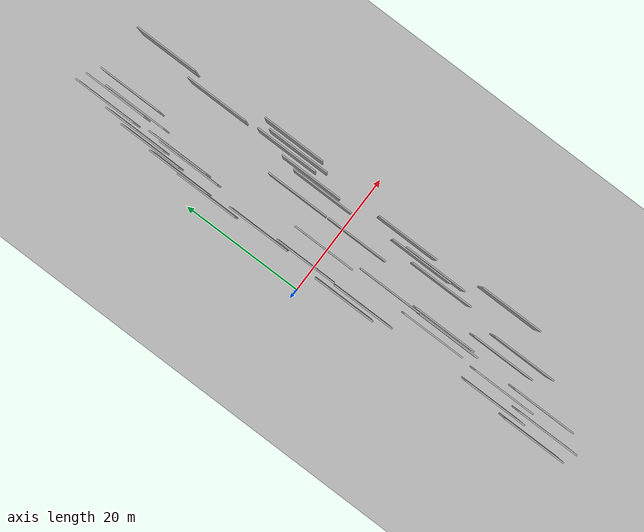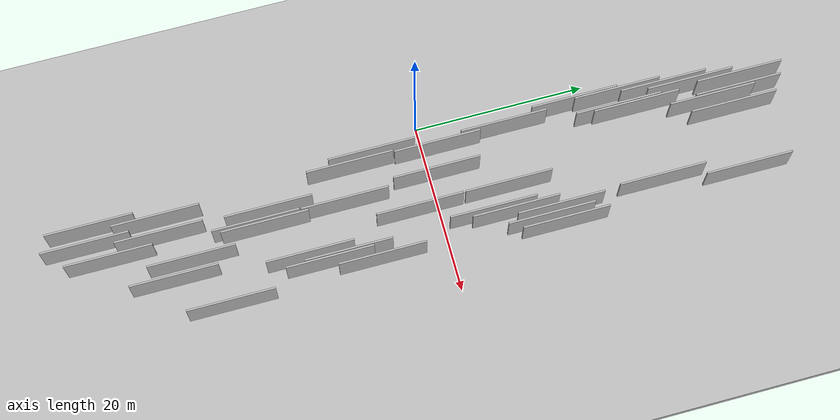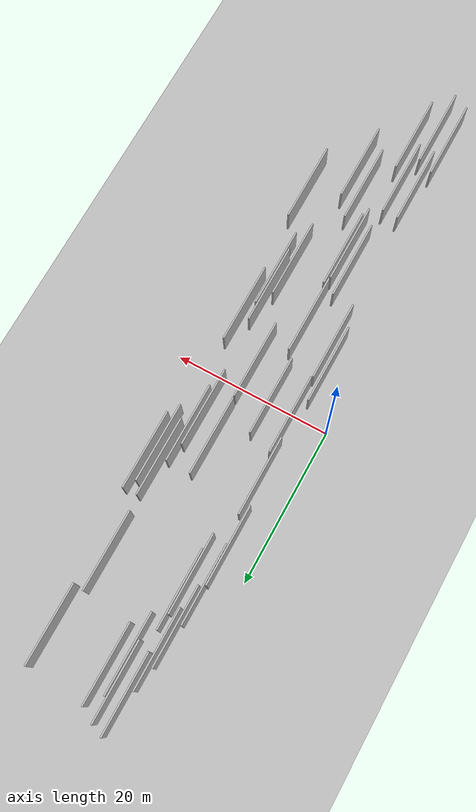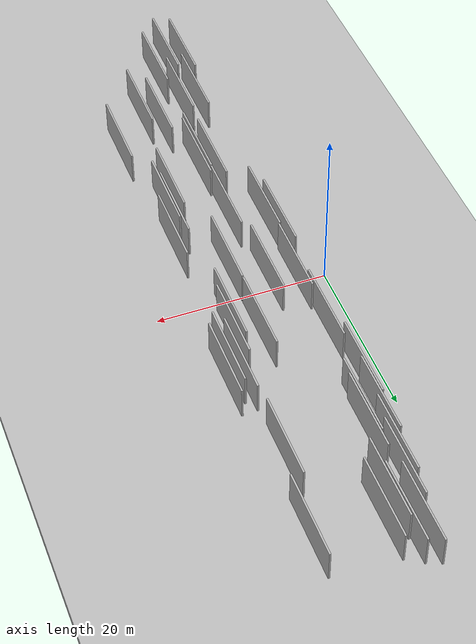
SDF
<?xml version="1.0" encoding="utf-8"?>

<sdf version="1.6">

   <world name="default">

      <gui fullscreen="0">

         <camera name="user_camera">

            <pose>-15 0 4.57585 0 0 0</pose>

            <view_controller>orbit</view_controller>

         </camera>

      </gui>

      <scene>

         <sky>

           <clouds>

             <speed>12</speed>

           </clouds>

         </sky>

         <ambient>0.4 0.4 0.4 1</ambient>

         <background>0.7 0.7 0.7 1</background>

         <shadows>1</shadows>

      </scene>

      <gravity>0 0 -9.8066</gravity>

      <magnetic_field>6e-06 2.3e-05 -4.2e-05</magnetic_field>

      <physics default="0" name="default_physics" type="ode">

         <ode>

            <solver>

               <type>quick</type>

               <iters>10</iters>

               <sor>1.0</sor>

               <use_dynamic_moi_rescaling>0</use_dynamic_moi_rescaling>

            </solver>

            <constraints>

               <cfm>0</cfm>

               <erp>0.2</erp>

               <contact_max_correcting_vel>100</contact_max_correcting_vel>

               <contact_surface_layer>0.001</contact_surface_layer>

            </constraints>

         </ode>

         <max_step_size>0.004</max_step_size>

         <real_time_factor>1</real_time_factor>

         <real_time_update_rate>250</real_time_update_rate>

      </physics>

      <light name="sun" type="directional">

         <cast_shadows>1</cast_shadows>

         <pose>0 0 10 0 0 0</pose>

         <diffuse>0.8 0.8 0.8 1</diffuse>

         <specular>0.2 0.2 0.2 1</specular>

         <attenuation>

            <range>1000</range>

            <constant>0.9</constant>

            <linear>0.01</linear>

            <quadratic>0.001</quadratic>

         </attenuation>

         <direction>-0.5 0.1 -0.9</direction>

      </light>

      <include>

         <name>ground_plane_1</name>

         <uri>model://HANNAS_ground_plane</uri>

         <pose>0 0 0  0 0 0</pose>

      </include>

      <include>

         <name>ground_plane_2</name>

         <uri>model://HANNAS_ground_plane</uri>

         <pose>100 0 0  0 0 0</pose>

      </include>

      <model name="HANNAS_wall_1">

         <static>1</static>

         <pose frame="">5.0728 36.7330 2.5 0.000000 0.000000 1.570796</pose>

         <link name="link">

            <pose frame="">0 0 2.00 0 0 0</pose>

            <collision name="collision">

               <geometry>

                  <box>

                     <size>10.00 0.2 4.00</size>

                  </box>

               </geometry>

               <max_contacts>10</max_contacts>

               <surface>

                  <contact>

                     <ode/>

                  </contact>

                  <bounce/>

                  <friction>

                     <torsional>

                        <ode/>

                     </torsional>

                     <ode/>

                  </friction>

               </surface>

            </collision>

            <visual name="visual">

               <cast_shadows>0</cast_shadows>

               <geometry>

                  <box>

                     <size>10.00 0.2 4.00</size>

                  </box>

               </geometry>

               <material>

                  <script>

                     <uri>model://HANNAS_wall/materials/scripts</uri>

                     <uri>model://HANNAS_wall/materials/textures</uri>

                     <name>vrc/HANNAS_wall</name>

                  </script>

               </material>

            </visual>

            <self_collide>0</self_collide>

            <enable_wind>0</enable_wind>

            <kinematic>0</kinematic>

         </link>

      </model>

      <model name="HANNAS_wall_2">

         <static>1</static>

         <pose frame="">13.0026 -15.4827 2.5 0.000000 0.000000 1.570796</pose>

         <link name="link">

            <pose frame="">0 0 2.00 0 0 0</pose>

            <collision name="collision">

               <geometry>

                  <box>

                     <size>10.00 0.2 4.00</size>

                  </box>

               </geometry>

               <max_contacts>10</max_contacts>

               <surface>

                  <contact>

                     <ode/>

                  </contact>

                  <bounce/>

                  <friction>

                     <torsional>

                        <ode/>

                     </torsional>

                     <ode/>

                  </friction>

               </surface>

            </collision>

            <visual name="visual">

               <cast_shadows>0</cast_shadows>

               <geometry>

                  <box>

                     <size>10.00 0.2 4.00</size>

                  </box>

               </geometry>

               <material>

                  <script>

                     <uri>model://HANNAS_wall/materials/scripts</uri>

                     <uri>model://HANNAS_wall/materials/textures</uri>

                     <name>vrc/HANNAS_wall</name>

                  </script>

               </material>

            </visual>

            <self_collide>0</self_collide>

            <enable_wind>0</enable_wind>

            <kinematic>0</kinematic>

         </link>

      </model>

      <model name="HANNAS_wall_3">

         <static>1</static>

         <pose frame="">14.5933 24.6313 2.5 0.000000 0.000000 1.570796</pose>

         <link name="link">

            <pose frame="">0 0 2.00 0 0 0</pose>

            <collision name="collision">

               <geometry>

                  <box>

                     <size>10.00 0.2 4.00</size>

                  </box>

               </geometry>

               <max_contacts>10</max_contacts>

               <surface>

                  <contact>

                     <ode/>

                  </contact>

                  <bounce/>

                  <friction>

                     <torsional>

                        <ode/>

                     </torsional>

                     <ode/>

                  </friction>

               </surface>

            </collision>

            <visual name="visual">

               <cast_shadows>0</cast_shadows>

               <geometry>

                  <box>

                     <size>10.00 0.2 4.00</size>

                  </box>

               </geometry>

               <material>

                  <script>

                     <uri>model://HANNAS_wall/materials/scripts</uri>

                     <uri>model://HANNAS_wall/materials/textures</uri>

                     <name>vrc/HANNAS_wall</name>

                  </script>

               </material>

            </visual>

            <self_collide>0</self_collide>

            <enable_wind>0</enable_wind>

            <kinematic>0</kinematic>

         </link>

      </model>

      <model name="HANNAS_wall_4">

         <static>1</static>

         <pose frame="">15.7296 11.4250 2.5 0.000000 0.000000 1.570796</pose>

         <link name="link">

            <pose frame="">0 0 2.00 0 0 0</pose>

            <collision name="collision">

               <geometry>

                  <box>

                     <size>10.00 0.2 4.00</size>

                  </box>

               </geometry>

               <max_contacts>10</max_contacts>

               <surface>

                  <contact>

                     <ode/>

                  </contact>

                  <bounce/>

                  <friction>

                     <torsional>

                        <ode/>

                     </torsional>

                     <ode/>

                  </friction>

               </surface>

            </collision>

            <visual name="visual">

               <cast_shadows>0</cast_shadows>

               <geometry>

                  <box>

                     <size>10.00 0.2 4.00</size>

                  </box>

               </geometry>

               <material>

                  <script>

                     <uri>model://HANNAS_wall/materials/scripts</uri>

                     <uri>model://HANNAS_wall/materials/textures</uri>

                     <name>vrc/HANNAS_wall</name>

                  </script>

               </material>

            </visual>

            <self_collide>0</self_collide>

            <enable_wind>0</enable_wind>

            <kinematic>0</kinematic>

         </link>

      </model>

      <model name="HANNAS_wall_5">

         <static>1</static>

         <pose frame="">11.8016 -30.5223 2.5 0.000000 0.000000 1.570796</pose>

         <link name="link">

            <pose frame="">0 0 2.00 0 0 0</pose>

            <collision name="collision">

               <geometry>

                  <box>

                     <size>10.00 0.2 4.00</size>

                  </box>

               </geometry>

               <max_contacts>10</max_contacts>

               <surface>

                  <contact>

                     <ode/>

                  </contact>

                  <bounce/>

                  <friction>

                     <torsional>

                        <ode/>

                     </torsional>

                     <ode/>

                  </friction>

               </surface>

            </collision>

            <visual name="visual">

               <cast_shadows>0</cast_shadows>

               <geometry>

                  <box>

                     <size>10.00 0.2 4.00</size>

                  </box>

               </geometry>

               <material>

                  <script>

                     <uri>model://HANNAS_wall/materials/scripts</uri>

                     <uri>model://HANNAS_wall/materials/textures</uri>

                     <name>vrc/HANNAS_wall</name>

                  </script>

               </material>

            </visual>

            <self_collide>0</self_collide>

            <enable_wind>0</enable_wind>

            <kinematic>0</kinematic>

         </link>

      </model>

      <model name="HANNAS_wall_6">

         <static>1</static>

         <pose frame="">6.6062 36.1043 2.5 0.000000 0.000000 1.570796</pose>

         <link name="link">

            <pose frame="">0 0 2.00 0 0 0</pose>

            <collision name="collision">

               <geometry>

                  <box>

                     <size>10.00 0.2 4.00</size>

                  </box>

               </geometry>

               <max_contacts>10</max_contacts>

               <surface>

                  <contact>

                     <ode/>

                  </contact>

                  <bounce/>

                  <friction>

                     <torsional>

                        <ode/>

                     </torsional>

                     <ode/>

                  </friction>

               </surface>

            </collision>

            <visual name="visual">

               <cast_shadows>0</cast_shadows>

               <geometry>

                  <box>

                     <size>10.00 0.2 4.00</size>

                  </box>

               </geometry>

               <material>

                  <script>

                     <uri>model://HANNAS_wall/materials/scripts</uri>

                     <uri>model://HANNAS_wall/materials/textures</uri>

                     <name>vrc/HANNAS_wall</name>

                  </script>

               </material>

            </visual>

            <self_collide>0</self_collide>

            <enable_wind>0</enable_wind>

            <kinematic>0</kinematic>

         </link>

      </model>

      <model name="HANNAS_wall_7">

         <static>1</static>

         <pose frame="">3.6469 -38.3258 2.5 0.000000 0.000000 1.570796</pose>

         <link name="link">

            <pose frame="">0 0 2.00 0 0 0</pose>

            <collision name="collision">

               <geometry>

                  <box>

                     <size>10.00 0.2 4.00</size>

                  </box>

               </geometry>

               <max_contacts>10</max_contacts>

               <surface>

                  <contact>

                     <ode/>

                  </contact>

                  <bounce/>

                  <friction>

                     <torsional>

                        <ode/>

                     </torsional>

                     <ode/>

                  </friction>

               </surface>

            </collision>

            <visual name="visual">

               <cast_shadows>0</cast_shadows>

               <geometry>

                  <box>

                     <size>10.00 0.2 4.00</size>

                  </box>

               </geometry>

               <material>

                  <script>

                     <uri>model://HANNAS_wall/materials/scripts</uri>

                     <uri>model://HANNAS_wall/materials/textures</uri>

                     <name>vrc/HANNAS_wall</name>

                  </script>

               </material>

            </visual>

            <self_collide>0</self_collide>

            <enable_wind>0</enable_wind>

            <kinematic>0</kinematic>

         </link>

      </model>

      <model name="HANNAS_wall_8">

         <static>1</static>

         <pose frame="">4.2327 1.4274 2.5 0.000000 0.000000 1.570796</pose>

         <link name="link">

            <pose frame="">0 0 2.00 0 0 0</pose>

            <collision name="collision">

               <geometry>

                  <box>

                     <size>10.00 0.2 4.00</size>

                  </box>

               </geometry>

               <max_contacts>10</max_contacts>

               <surface>

                  <contact>

                     <ode/>

                  </contact>

                  <bounce/>

                  <friction>

                     <torsional>

                        <ode/>

                     </torsional>

                     <ode/>

                  </friction>

               </surface>

            </collision>

            <visual name="visual">

               <cast_shadows>0</cast_shadows>

               <geometry>

                  <box>

                     <size>10.00 0.2 4.00</size>

                  </box>

               </geometry>

               <material>

                  <script>

                     <uri>model://HANNAS_wall/materials/scripts</uri>

                     <uri>model://HANNAS_wall/materials/textures</uri>

                     <name>vrc/HANNAS_wall</name>

                  </script>

               </material>

            </visual>

            <self_collide>0</self_collide>

            <enable_wind>0</enable_wind>

            <kinematic>0</kinematic>

         </link>

      </model>

      <model name="HANNAS_wall_9">

         <static>1</static>

         <pose frame="">15.3013 -7.8257 2.5 0.000000 0.000000 1.570796</pose>

         <link name="link">

            <pose frame="">0 0 2.00 0 0 0</pose>

            <collision name="collision">

               <geometry>

                  <box>

                     <size>10.00 0.2 4.00</size>

                  </box>

               </geometry>

               <max_contacts>10</max_contacts>

               <surface>

                  <contact>

                     <ode/>

                  </contact>

                  <bounce/>

                  <friction>

                     <torsional>

                        <ode/>

                     </torsional>

                     <ode/>

                  </friction>

               </surface>

            </collision>

            <visual name="visual">

               <cast_shadows>0</cast_shadows>

               <geometry>

                  <box>

                     <size>10.00 0.2 4.00</size>

                  </box>

               </geometry>

               <material>

                  <script>

                     <uri>model://HANNAS_wall/materials/scripts</uri>

                     <uri>model://HANNAS_wall/materials/textures</uri>

                     <name>vrc/HANNAS_wall</name>

                  </script>

               </material>

            </visual>

            <self_collide>0</self_collide>

            <enable_wind>0</enable_wind>

            <kinematic>0</kinematic>

         </link>

      </model>

      <model name="HANNAS_wall_10">

         <static>1</static>

         <pose frame="">10.8585 7.8525 2.5 0.000000 0.000000 1.570796</pose>

         <link name="link">

            <pose frame="">0 0 2.00 0 0 0</pose>

            <collision name="collision">

               <geometry>

                  <box>

                     <size>10.00 0.2 4.00</size>

                  </box>

               </geometry>

               <max_contacts>10</max_contacts>

               <surface>

                  <contact>

                     <ode/>

                  </contact>

                  <bounce/>

                  <friction>

                     <torsional>

                        <ode/>

                     </torsional>

                     <ode/>

                  </friction>

               </surface>

            </collision>

            <visual name="visual">

               <cast_shadows>0</cast_shadows>

               <geometry>

                  <box>

                     <size>10.00 0.2 4.00</size>

                  </box>

               </geometry>

               <material>

                  <script>

                     <uri>model://HANNAS_wall/materials/scripts</uri>

                     <uri>model://HANNAS_wall/materials/textures</uri>

                     <name>vrc/HANNAS_wall</name>

                  </script>

               </material>

            </visual>

            <self_collide>0</self_collide>

            <enable_wind>0</enable_wind>

            <kinematic>0</kinematic>

         </link>

      </model>

      <model name="HANNAS_wall_11">

         <static>1</static>

         <pose frame="">4.0507 -8.6808 2.5 0.000000 0.000000 1.570796</pose>

         <link name="link">

            <pose frame="">0 0 2.00 0 0 0</pose>

            <collision name="collision">

               <geometry>

                  <box>

                     <size>10.00 0.2 4.00</size>

                  </box>

               </geometry>

               <max_contacts>10</max_contacts>

               <surface>

                  <contact>

                     <ode/>

                  </contact>

                  <bounce/>

                  <friction>

                     <torsional>

                        <ode/>

                     </torsional>

                     <ode/>

                  </friction>

               </surface>

            </collision>

            <visual name="visual">

               <cast_shadows>0</cast_shadows>

               <geometry>

                  <box>

                     <size>10.00 0.2 4.00</size>

                  </box>

               </geometry>

               <material>

                  <script>

                     <uri>model://HANNAS_wall/materials/scripts</uri>

                     <uri>model://HANNAS_wall/materials/textures</uri>

                     <name>vrc/HANNAS_wall</name>

                  </script>

               </material>

            </visual>

            <self_collide>0</self_collide>

            <enable_wind>0</enable_wind>

            <kinematic>0</kinematic>

         </link>

      </model>

      <model name="HANNAS_wall_12">

         <static>1</static>

         <pose frame="">7.9698 -20.4169 2.5 0.000000 0.000000 1.570796</pose>

         <link name="link">

            <pose frame="">0 0 2.00 0 0 0</pose>

            <collision name="collision">

               <geometry>

                  <box>

                     <size>10.00 0.2 4.00</size>

                  </box>

               </geometry>

               <max_contacts>10</max_contacts>

               <surface>

                  <contact>

                     <ode/>

                  </contact>

                  <bounce/>

                  <friction>

                     <torsional>

                        <ode/>

                     </torsional>

                     <ode/>

                  </friction>

               </surface>

            </collision>

            <visual name="visual">

               <cast_shadows>0</cast_shadows>

               <geometry>

                  <box>

                     <size>10.00 0.2 4.00</size>

                  </box>

               </geometry>

               <material>

                  <script>

                     <uri>model://HANNAS_wall/materials/scripts</uri>

                     <uri>model://HANNAS_wall/materials/textures</uri>

                     <name>vrc/HANNAS_wall</name>

                  </script>

               </material>

            </visual>

            <self_collide>0</self_collide>

            <enable_wind>0</enable_wind>

            <kinematic>0</kinematic>

         </link>

      </model>

      <model name="HANNAS_wall_13">

         <static>1</static>

         <pose frame="">4.5124 -31.0169 2.5 0.000000 0.000000 1.570796</pose>

         <link name="link">

            <pose frame="">0 0 2.00 0 0 0</pose>

            <collision name="collision">

               <geometry>

                  <box>

                     <size>10.00 0.2 4.00</size>

                  </box>

               </geometry>

               <max_contacts>10</max_contacts>

               <surface>

                  <contact>

                     <ode/>

                  </contact>

                  <bounce/>

                  <friction>

                     <torsional>

                        <ode/>

                     </torsional>

                     <ode/>

                  </friction>

               </surface>

            </collision>

            <visual name="visual">

               <cast_shadows>0</cast_shadows>

               <geometry>

                  <box>

                     <size>10.00 0.2 4.00</size>

                  </box>

               </geometry>

               <material>

                  <script>

                     <uri>model://HANNAS_wall/materials/scripts</uri>

                     <uri>model://HANNAS_wall/materials/textures</uri>

                     <name>vrc/HANNAS_wall</name>

                  </script>

               </material>

            </visual>

            <self_collide>0</self_collide>

            <enable_wind>0</enable_wind>

            <kinematic>0</kinematic>

         </link>

      </model>

      <model name="HANNAS_wall_14">

         <static>1</static>

         <pose frame="">6.7409 -18.6886 2.5 0.000000 0.000000 1.570796</pose>

         <link name="link">

            <pose frame="">0 0 2.00 0 0 0</pose>

            <collision name="collision">

               <geometry>

                  <box>

                     <size>10.00 0.2 4.00</size>

                  </box>

               </geometry>

               <max_contacts>10</max_contacts>

               <surface>

                  <contact>

                     <ode/>

                  </contact>

                  <bounce/>

                  <friction>

                     <torsional>

                        <ode/>

                     </torsional>

                     <ode/>

                  </friction>

               </surface>

            </collision>

            <visual name="visual">

               <cast_shadows>0</cast_shadows>

               <geometry>

                  <box>

                     <size>10.00 0.2 4.00</size>

                  </box>

               </geometry>

               <material>

                  <script>

                     <uri>model://HANNAS_wall/materials/scripts</uri>

                     <uri>model://HANNAS_wall/materials/textures</uri>

                     <name>vrc/HANNAS_wall</name>

                  </script>

               </material>

            </visual>

            <self_collide>0</self_collide>

            <enable_wind>0</enable_wind>

            <kinematic>0</kinematic>

         </link>

      </model>

      <model name="HANNAS_wall_15">

         <static>1</static>

         <pose frame="">16.1051 -25.1058 2.5 0.000000 0.000000 1.570796</pose>

         <link name="link">

            <pose frame="">0 0 2.00 0 0 0</pose>

            <collision name="collision">

               <geometry>

                  <box>

                     <size>10.00 0.2 4.00</size>

                  </box>

               </geometry>

               <max_contacts>10</max_contacts>

               <surface>

                  <contact>

                     <ode/>

                  </contact>

                  <bounce/>

                  <friction>

                     <torsional>

                        <ode/>

                     </torsional>

                     <ode/>

                  </friction>

               </surface>

            </collision>

            <visual name="visual">

               <cast_shadows>0</cast_shadows>

               <geometry>

                  <box>

                     <size>10.00 0.2 4.00</size>

                  </box>

               </geometry>

               <material>

                  <script>

                     <uri>model://HANNAS_wall/materials/scripts</uri>

                     <uri>model://HANNAS_wall/materials/textures</uri>

                     <name>vrc/HANNAS_wall</name>

                  </script>

               </material>

            </visual>

            <self_collide>0</self_collide>

            <enable_wind>0</enable_wind>

            <kinematic>0</kinematic>

         </link>

      </model>

      <model name="HANNAS_wall_16">

         <static>1</static>

         <pose frame="">10.1041 -28.1925 2.5 0.000000 0.000000 1.570796</pose>

         <link name="link">

            <pose frame="">0 0 2.00 0 0 0</pose>

            <collision name="collision">

               <geometry>

                  <box>

                     <size>10.00 0.2 4.00</size>

                  </box>

               </geometry>

               <max_contacts>10</max_contacts>

               <surface>

                  <contact>

                     <ode/>

                  </contact>

                  <bounce/>

                  <friction>

                     <torsional>

                        <ode/>

                     </torsional>

                     <ode/>

                  </friction>

               </surface>

            </collision>

            <visual name="visual">

               <cast_shadows>0</cast_shadows>

               <geometry>

                  <box>

                     <size>10.00 0.2 4.00</size>

                  </box>

               </geometry>

               <material>

                  <script>

                     <uri>model://HANNAS_wall/materials/scripts</uri>

                     <uri>model://HANNAS_wall/materials/textures</uri>

                     <name>vrc/HANNAS_wall</name>

                  </script>

               </material>

            </visual>

            <self_collide>0</self_collide>

            <enable_wind>0</enable_wind>

            <kinematic>0</kinematic>

         </link>

      </model>

      <model name="HANNAS_wall_17">

         <static>1</static>

         <pose frame="">15.8898 34.3569 2.5 0.000000 0.000000 1.570796</pose>

         <link name="link">

            <pose frame="">0 0 2.00 0 0 0</pose>

            <collision name="collision">

               <geometry>

                  <box>

                     <size>10.00 0.2 4.00</size>

                  </box>

               </geometry>

               <max_contacts>10</max_contacts>

               <surface>

                  <contact>

                     <ode/>

                  </contact>

                  <bounce/>

                  <friction>

                     <torsional>

                        <ode/>

                     </torsional>

                     <ode/>

                  </friction>

               </surface>

            </collision>

            <visual name="visual">

               <cast_shadows>0</cast_shadows>

               <geometry>

                  <box>

                     <size>10.00 0.2 4.00</size>

                  </box>

               </geometry>

               <material>

                  <script>

                     <uri>model://HANNAS_wall/materials/scripts</uri>

                     <uri>model://HANNAS_wall/materials/textures</uri>

                     <name>vrc/HANNAS_wall</name>

                  </script>

               </material>

            </visual>

            <self_collide>0</self_collide>

            <enable_wind>0</enable_wind>

            <kinematic>0</kinematic>

         </link>

      </model>

      <model name="HANNAS_wall_18">

         <static>1</static>

         <pose frame="">3.1730 17.7629 2.5 0.000000 0.000000 1.570796</pose>

         <link name="link">

            <pose frame="">0 0 2.00 0 0 0</pose>

            <collision name="collision">

               <geometry>

                  <box>

                     <size>10.00 0.2 4.00</size>

                  </box>

               </geometry>

               <max_contacts>10</max_contacts>

               <surface>

                  <contact>

                     <ode/>

                  </contact>

                  <bounce/>

                  <friction>

                     <torsional>

                        <ode/>

                     </torsional>

                     <ode/>

                  </friction>

               </surface>

            </collision>

            <visual name="visual">

               <cast_shadows>0</cast_shadows>

               <geometry>

                  <box>

                     <size>10.00 0.2 4.00</size>

                  </box>

               </geometry>

               <material>

                  <script>

                     <uri>model://HANNAS_wall/materials/scripts</uri>

                     <uri>model://HANNAS_wall/materials/textures</uri>

                     <name>vrc/HANNAS_wall</name>

                  </script>

               </material>

            </visual>

            <self_collide>0</self_collide>

            <enable_wind>0</enable_wind>

            <kinematic>0</kinematic>

         </link>

      </model>

      <model name="HANNAS_wall_19">

         <static>1</static>

         <pose frame="">6.4500 -31.0621 2.5 0.000000 0.000000 1.570796</pose>

         <link name="link">

            <pose frame="">0 0 2.00 0 0 0</pose>

            <collision name="collision">

               <geometry>

                  <box>

                     <size>10.00 0.2 4.00</size>

                  </box>

               </geometry>

               <max_contacts>10</max_contacts>

               <surface>

                  <contact>

                     <ode/>

                  </contact>

                  <bounce/>

                  <friction>

                     <torsional>

                        <ode/>

                     </torsional>

                     <ode/>

                  </friction>

               </surface>

            </collision>

            <visual name="visual">

               <cast_shadows>0</cast_shadows>

               <geometry>

                  <box>

                     <size>10.00 0.2 4.00</size>

                  </box>

               </geometry>

               <material>

                  <script>

                     <uri>model://HANNAS_wall/materials/scripts</uri>

                     <uri>model://HANNAS_wall/materials/textures</uri>

                     <name>vrc/HANNAS_wall</name>

                  </script>

               </material>

            </visual>

            <self_collide>0</self_collide>

            <enable_wind>0</enable_wind>

            <kinematic>0</kinematic>

         </link>

      </model>

      <model name="HANNAS_wall_20">

         <static>1</static>

         <pose frame="">14.8549 12.7727 2.5 0.000000 0.000000 1.570796</pose>

         <link name="link">

            <pose frame="">0 0 2.00 0 0 0</pose>

            <collision name="collision">

               <geometry>

                  <box>

                     <size>10.00 0.2 4.00</size>

                  </box>

               </geometry>

               <max_contacts>10</max_contacts>

               <surface>

                  <contact>

                     <ode/>

                  </contact>

                  <bounce/>

                  <friction>

                     <torsional>

                        <ode/>

                     </torsional>

                     <ode/>

                  </friction>

               </surface>

            </collision>

            <visual name="visual">

               <cast_shadows>0</cast_shadows>

               <geometry>

                  <box>

                     <size>10.00 0.2 4.00</size>

                  </box>

               </geometry>

               <material>

                  <script>

                     <uri>model://HANNAS_wall/materials/scripts</uri>

                     <uri>model://HANNAS_wall/materials/textures</uri>

                     <name>vrc/HANNAS_wall</name>

                  </script>

               </material>

            </visual>

            <self_collide>0</self_collide>

            <enable_wind>0</enable_wind>

            <kinematic>0</kinematic>

         </link>

      </model>

      <model name="HANNAS_wall_21">

         <static>1</static>

         <pose frame="">13.9153 -11.3150 2.5 0.000000 0.000000 1.570796</pose>

         <link name="link">

            <pose frame="">0 0 2.00 0 0 0</pose>

            <collision name="collision">

               <geometry>

                  <box>

                     <size>10.00 0.2 4.00</size>

                  </box>

               </geometry>

               <max_contacts>10</max_contacts>

               <surface>

                  <contact>

                     <ode/>

                  </contact>

                  <bounce/>

                  <friction>

                     <torsional>

                        <ode/>

                     </torsional>

                     <ode/>

                  </friction>

               </surface>

            </collision>

            <visual name="visual">

               <cast_shadows>0</cast_shadows>

               <geometry>

                  <box>

                     <size>10.00 0.2 4.00</size>

                  </box>

               </geometry>

               <material>

                  <script>

                     <uri>model://HANNAS_wall/materials/scripts</uri>

                     <uri>model://HANNAS_wall/materials/textures</uri>

                     <name>vrc/HANNAS_wall</name>

                  </script>

               </material>

            </visual>

            <self_collide>0</self_collide>

            <enable_wind>0</enable_wind>

            <kinematic>0</kinematic>

         </link>

      </model>

      <model name="HANNAS_wall_22">

         <static>1</static>

         <pose frame="">5.5779 -39.1856 2.5 0.000000 0.000000 1.570796</pose>

         <link name="link">

            <pose frame="">0 0 2.00 0 0 0</pose>

            <collision name="collision">

               <geometry>

                  <box>

                     <size>10.00 0.2 4.00</size>

                  </box>

               </geometry>

               <max_contacts>10</max_contacts>

               <surface>

                  <contact>

                     <ode/>

                  </contact>

                  <bounce/>

                  <friction>

                     <torsional>

                        <ode/>

                     </torsional>

                     <ode/>

                  </friction>

               </surface>

            </collision>

            <visual name="visual">

               <cast_shadows>0</cast_shadows>

               <geometry>

                  <box>

                     <size>10.00 0.2 4.00</size>

                  </box>

               </geometry>

               <material>

                  <script>

                     <uri>model://HANNAS_wall/materials/scripts</uri>

                     <uri>model://HANNAS_wall/materials/textures</uri>

                     <name>vrc/HANNAS_wall</name>

                  </script>

               </material>

            </visual>

            <self_collide>0</self_collide>

            <enable_wind>0</enable_wind>

            <kinematic>0</kinematic>

         </link>

      </model>

      <model name="HANNAS_wall_23">

         <static>1</static>

         <pose frame="">7.2116 0.5257 2.5 0.000000 0.000000 1.570796</pose>

         <link name="link">

            <pose frame="">0 0 2.00 0 0 0</pose>

            <collision name="collision">

               <geometry>

                  <box>

                     <size>10.00 0.2 4.00</size>

                  </box>

               </geometry>

               <max_contacts>10</max_contacts>

               <surface>

                  <contact>

                     <ode/>

                  </contact>

                  <bounce/>

                  <friction>

                     <torsional>

                        <ode/>

                     </torsional>

                     <ode/>

                  </friction>

               </surface>

            </collision>

            <visual name="visual">

               <cast_shadows>0</cast_shadows>

               <geometry>

                  <box>

                     <size>10.00 0.2 4.00</size>

                  </box>

               </geometry>

               <material>

                  <script>

                     <uri>model://HANNAS_wall/materials/scripts</uri>

                     <uri>model://HANNAS_wall/materials/textures</uri>

                     <name>vrc/HANNAS_wall</name>

                  </script>

               </material>

            </visual>

            <self_collide>0</self_collide>

            <enable_wind>0</enable_wind>

            <kinematic>0</kinematic>

         </link>

      </model>

      <model name="HANNAS_wall_24">

         <static>1</static>

         <pose frame="">8.4125 34.9837 2.5 0.000000 0.000000 1.570796</pose>

         <link name="link">

            <pose frame="">0 0 2.00 0 0 0</pose>

            <collision name="collision">

               <geometry>

                  <box>

                     <size>10.00 0.2 4.00</size>

                  </box>

               </geometry>

               <max_contacts>10</max_contacts>

               <surface>

                  <contact>

                     <ode/>

                  </contact>

                  <bounce/>

                  <friction>

                     <torsional>

                        <ode/>

                     </torsional>

                     <ode/>

                  </friction>

               </surface>

            </collision>

            <visual name="visual">

               <cast_shadows>0</cast_shadows>

               <geometry>

                  <box>

                     <size>10.00 0.2 4.00</size>

                  </box>

               </geometry>

               <material>

                  <script>

                     <uri>model://HANNAS_wall/materials/scripts</uri>

                     <uri>model://HANNAS_wall/materials/textures</uri>

                     <name>vrc/HANNAS_wall</name>

                  </script>

               </material>

            </visual>

            <self_collide>0</self_collide>

            <enable_wind>0</enable_wind>

            <kinematic>0</kinematic>

         </link>

      </model>

      <model name="HANNAS_wall_25">

         <static>1</static>

         <pose frame="">5.2336 22.3768 2.5 0.000000 0.000000 1.570796</pose>

         <link name="link">

            <pose frame="">0 0 2.00 0 0 0</pose>

            <collision name="collision">

               <geometry>

                  <box>

                     <size>10.00 0.2 4.00</size>

                  </box>

               </geometry>

               <max_contacts>10</max_contacts>

               <surface>

                  <contact>

                     <ode/>

                  </contact>

                  <bounce/>

                  <friction>

                     <torsional>

                        <ode/>

                     </torsional>

                     <ode/>

                  </friction>

               </surface>

            </collision>

            <visual name="visual">

               <cast_shadows>0</cast_shadows>

               <geometry>

                  <box>

                     <size>10.00 0.2 4.00</size>

                  </box>

               </geometry>

               <material>

                  <script>

                     <uri>model://HANNAS_wall/materials/scripts</uri>

                     <uri>model://HANNAS_wall/materials/textures</uri>

                     <name>vrc/HANNAS_wall</name>

                  </script>

               </material>

            </visual>

            <self_collide>0</self_collide>

            <enable_wind>0</enable_wind>

            <kinematic>0</kinematic>

         </link>

      </model>

      <model name="HANNAS_wall_26">

         <static>1</static>

         <pose frame="">5.4845 24.4235 2.5 0.000000 0.000000 1.570796</pose>

         <link name="link">

            <pose frame="">0 0 2.00 0 0 0</pose>

            <collision name="collision">

               <geometry>

                  <box>

                     <size>10.00 0.2 4.00</size>

                  </box>

               </geometry>

               <max_contacts>10</max_contacts>

               <surface>

                  <contact>

                     <ode/>

                  </contact>

                  <bounce/>

                  <friction>

                     <torsional>

                        <ode/>

                     </torsional>

                     <ode/>

                  </friction>

               </surface>

            </collision>

            <visual name="visual">

               <cast_shadows>0</cast_shadows>

               <geometry>

                  <box>

                     <size>10.00 0.2 4.00</size>

                  </box>

               </geometry>

               <material>

                  <script>

                     <uri>model://HANNAS_wall/materials/scripts</uri>

                     <uri>model://HANNAS_wall/materials/textures</uri>

                     <name>vrc/HANNAS_wall</name>

                  </script>

               </material>

            </visual>

            <self_collide>0</self_collide>

            <enable_wind>0</enable_wind>

            <kinematic>0</kinematic>

         </link>

      </model>

      <model name="HANNAS_wall_27">

         <static>1</static>

         <pose frame="">10.8734 -2.3940 2.5 0.000000 0.000000 1.570796</pose>

         <link name="link">

            <pose frame="">0 0 2.00 0 0 0</pose>

            <collision name="collision">

               <geometry>

                  <box>

                     <size>10.00 0.2 4.00</size>

                  </box>

               </geometry>

               <max_contacts>10</max_contacts>

               <surface>

                  <contact>

                     <ode/>

                  </contact>

                  <bounce/>

                  <friction>

                     <torsional>

                        <ode/>

                     </torsional>

                     <ode/>

                  </friction>

               </surface>

            </collision>

            <visual name="visual">

               <cast_shadows>0</cast_shadows>

               <geometry>

                  <box>

                     <size>10.00 0.2 4.00</size>

                  </box>

               </geometry>

               <material>

                  <script>

                     <uri>model://HANNAS_wall/materials/scripts</uri>

                     <uri>model://HANNAS_wall/materials/textures</uri>

                     <name>vrc/HANNAS_wall</name>

                  </script>

               </material>

            </visual>

            <self_collide>0</self_collide>

            <enable_wind>0</enable_wind>

            <kinematic>0</kinematic>

         </link>

      </model>

      <model name="HANNAS_wall_28">

         <static>1</static>

         <pose frame="">8.0346 -10.2580 2.5 0.000000 0.000000 1.570796</pose>

         <link name="link">

            <pose frame="">0 0 2.00 0 0 0</pose>

            <collision name="collision">

               <geometry>

                  <box>

                     <size>10.00 0.2 4.00</size>

                  </box>

               </geometry>

               <max_contacts>10</max_contacts>

               <surface>

                  <contact>

                     <ode/>

                  </contact>

                  <bounce/>

                  <friction>

                     <torsional>

                        <ode/>

                     </torsional>

                     <ode/>

                  </friction>

               </surface>

            </collision>

            <visual name="visual">

               <cast_shadows>0</cast_shadows>

               <geometry>

                  <box>

                     <size>10.00 0.2 4.00</size>

                  </box>

               </geometry>

               <material>

                  <script>

                     <uri>model://HANNAS_wall/materials/scripts</uri>

                     <uri>model://HANNAS_wall/materials/textures</uri>

                     <name>vrc/HANNAS_wall</name>

                  </script>

               </material>

            </visual>

            <self_collide>0</self_collide>

            <enable_wind>0</enable_wind>

            <kinematic>0</kinematic>

         </link>

      </model>

      <model name="HANNAS_wall_29">

         <static>1</static>

         <pose frame="">8.3602 -19.4955 2.5 0.000000 0.000000 1.570796</pose>

         <link name="link">

            <pose frame="">0 0 2.00 0 0 0</pose>

            <collision name="collision">

               <geometry>

                  <box>

                     <size>10.00 0.2 4.00</size>

                  </box>

               </geometry>

               <max_contacts>10</max_contacts>

               <surface>

                  <contact>

                     <ode/>

                  </contact>

                  <bounce/>

                  <friction>

                     <torsional>

                        <ode/>

                     </torsional>

                     <ode/>

                  </friction>

               </surface>

            </collision>

            <visual name="visual">

               <cast_shadows>0</cast_shadows>

               <geometry>

                  <box>

                     <size>10.00 0.2 4.00</size>

                  </box>

               </geometry>

               <material>

                  <script>

                     <uri>model://HANNAS_wall/materials/scripts</uri>

                     <uri>model://HANNAS_wall/materials/textures</uri>

                     <name>vrc/HANNAS_wall</name>

                  </script>

               </material>

            </visual>

            <self_collide>0</self_collide>

            <enable_wind>0</enable_wind>

            <kinematic>0</kinematic>

         </link>

      </model>

      <model name="HANNAS_wall_30">

         <static>1</static>

         <pose frame="">16.6085 12.8452 2.5 0.000000 0.000000 1.570796</pose>

         <link name="link">

            <pose frame="">0 0 2.00 0 0 0</pose>

            <collision name="collision">

               <geometry>

                  <box>

                     <size>10.00 0.2 4.00</size>

                  </box>

               </geometry>

               <max_contacts>10</max_contacts>

               <surface>

                  <contact>

                     <ode/>

                  </contact>

                  <bounce/>

                  <friction>

                     <torsional>

                        <ode/>

                     </torsional>

                     <ode/>

                  </friction>

               </surface>

            </collision>

            <visual name="visual">

               <cast_shadows>0</cast_shadows>

               <geometry>

                  <box>

                     <size>10.00 0.2 4.00</size>

                  </box>

               </geometry>

               <material>

                  <script>

                     <uri>model://HANNAS_wall/materials/scripts</uri>

                     <uri>model://HANNAS_wall/materials/textures</uri>

                     <name>vrc/HANNAS_wall</name>

                  </script>

               </material>

            </visual>

            <self_collide>0</self_collide>

            <enable_wind>0</enable_wind>

            <kinematic>0</kinematic>

         </link>

      </model>

      <model name="HANNAS_wall_31">

         <static>1</static>

         <pose frame="">4.4614 31.0731 2.5 0.000000 0.000000 1.570796</pose>

         <link name="link">

            <pose frame="">0 0 2.00 0 0 0</pose>

            <collision name="collision">

               <geometry>

                  <box>

                     <size>10.00 0.2 4.00</size>

                  </box>

               </geometry>

               <max_contacts>10</max_contacts>

               <surface>

                  <contact>

                     <ode/>

                  </contact>

                  <bounce/>

                  <friction>

                     <torsional>

                        <ode/>

                     </torsional>

                     <ode/>

                  </friction>

               </surface>

            </collision>

            <visual name="visual">

               <cast_shadows>0</cast_shadows>

               <geometry>

                  <box>

                     <size>10.00 0.2 4.00</size>

                  </box>

               </geometry>

               <material>

                  <script>

                     <uri>model://HANNAS_wall/materials/scripts</uri>

                     <uri>model://HANNAS_wall/materials/textures</uri>

                     <name>vrc/HANNAS_wall</name>

                  </script>

               </material>

            </visual>

            <self_collide>0</self_collide>

            <enable_wind>0</enable_wind>

            <kinematic>0</kinematic>

         </link>

      </model>

      <model name="HANNAS_wall_32">

         <static>1</static>

         <pose frame="">3.9071 28.0610 2.5 0.000000 0.000000 1.570796</pose>

         <link name="link">

            <pose frame="">0 0 2.00 0 0 0</pose>

            <collision name="collision">

               <geometry>

                  <box>

                     <size>10.00 0.2 4.00</size>

                  </box>

               </geometry>

               <max_contacts>10</max_contacts>

               <surface>

                  <contact>

                     <ode/>

                  </contact>

                  <bounce/>

                  <friction>

                     <torsional>

                        <ode/>

                     </torsional>

                     <ode/>

                  </friction>

               </surface>

            </collision>

            <visual name="visual">

               <cast_shadows>0</cast_shadows>

               <geometry>

                  <box>

                     <size>10.00 0.2 4.00</size>

                  </box>

               </geometry>

               <material>

                  <script>

                     <uri>model://HANNAS_wall/materials/scripts</uri>

                     <uri>model://HANNAS_wall/materials/textures</uri>

                     <name>vrc/HANNAS_wall</name>

                  </script>

               </material>

            </visual>

            <self_collide>0</self_collide>

            <enable_wind>0</enable_wind>

            <kinematic>0</kinematic>

         </link>

      </model>

      <model name="HANNAS_wall_33">

         <static>1</static>

         <pose frame="">6.9121 32.9536 2.5 0.000000 0.000000 1.570796</pose>

         <link name="link">

            <pose frame="">0 0 2.00 0 0 0</pose>

            <collision name="collision">

               <geometry>

                  <box>

                     <size>10.00 0.2 4.00</size>

                  </box>

               </geometry>

               <max_contacts>10</max_contacts>

               <surface>

                  <contact>

                     <ode/>

                  </contact>

                  <bounce/>

                  <friction>

                     <torsional>

                        <ode/>

                     </torsional>

                     <ode/>

                  </friction>

               </surface>

            </collision>

            <visual name="visual">

               <cast_shadows>0</cast_shadows>

               <geometry>

                  <box>

                     <size>10.00 0.2 4.00</size>

                  </box>

               </geometry>

               <material>

                  <script>

                     <uri>model://HANNAS_wall/materials/scripts</uri>

                     <uri>model://HANNAS_wall/materials/textures</uri>

                     <name>vrc/HANNAS_wall</name>

                  </script>

               </material>

            </visual>

            <self_collide>0</self_collide>

            <enable_wind>0</enable_wind>

            <kinematic>0</kinematic>

         </link>

      </model>

      <model name="HANNAS_wall_34">

         <static>1</static>

         <pose frame="">3.8368 9.2773 2.5 0.000000 0.000000 1.570796</pose>

         <link name="link">

            <pose frame="">0 0 2.00 0 0 0</pose>

            <collision name="collision">

               <geometry>

                  <box>

                     <size>10.00 0.2 4.00</size>

                  </box>

               </geometry>

               <max_contacts>10</max_contacts>

               <surface>

                  <contact>

                     <ode/>

                  </contact>

                  <bounce/>

                  <friction>

                     <torsional>

                        <ode/>

                     </torsional>

                     <ode/>

                  </friction>

               </surface>

            </collision>

            <visual name="visual">

               <cast_shadows>0</cast_shadows>

               <geometry>

                  <box>

                     <size>10.00 0.2 4.00</size>

                  </box>

               </geometry>

               <material>

                  <script>

                     <uri>model://HANNAS_wall/materials/scripts</uri>

                     <uri>model://HANNAS_wall/materials/textures</uri>

                     <name>vrc/HANNAS_wall</name>

                  </script>

               </material>

            </visual>

            <self_collide>0</self_collide>

            <enable_wind>0</enable_wind>

            <kinematic>0</kinematic>

         </link>

      </model>

      <model name="HANNAS_wall_35">

         <static>1</static>

         <pose frame="">7.6962 -36.9765 2.5 0.000000 0.000000 1.570796</pose>

         <link name="link">

            <pose frame="">0 0 2.00 0 0 0</pose>

            <collision name="collision">

               <geometry>

                  <box>

                     <size>10.00 0.2 4.00</size>

                  </box>

               </geometry>

               <max_contacts>10</max_contacts>

               <surface>

                  <contact>

                     <ode/>

                  </contact>

                  <bounce/>

                  <friction>

                     <torsional>

                        <ode/>

                     </torsional>

                     <ode/>

                  </friction>

               </surface>

            </collision>

            <visual name="visual">

               <cast_shadows>0</cast_shadows>

               <geometry>

                  <box>

                     <size>10.00 0.2 4.00</size>

                  </box>

               </geometry>

               <material>

                  <script>

                     <uri>model://HANNAS_wall/materials/scripts</uri>

                     <uri>model://HANNAS_wall/materials/textures</uri>

                     <name>vrc/HANNAS_wall</name>

                  </script>

               </material>

            </visual>

            <self_collide>0</self_collide>

            <enable_wind>0</enable_wind>

            <kinematic>0</kinematic>

         </link>

      </model>

      <model name="HANNAS_wall_36">

         <static>1</static>

         <pose frame="">14.1979 -13.5140 2.5 0.000000 0.000000 1.570796</pose>

         <link name="link">

            <pose frame="">0 0 2.00 0 0 0</pose>

            <collision name="collision">

               <geometry>

                  <box>

                     <size>10.00 0.2 4.00</size>

                  </box>

               </geometry>

               <max_contacts>10</max_contacts>

               <surface>

                  <contact>

                     <ode/>

                  </contact>

                  <bounce/>

                  <friction>

                     <torsional>

                        <ode/>

                     </torsional>

                     <ode/>

                  </friction>

               </surface>

            </collision>

            <visual name="visual">

               <cast_shadows>0</cast_shadows>

               <geometry>

                  <box>

                     <size>10.00 0.2 4.00</size>

                  </box>

               </geometry>

               <material>

                  <script>

                     <uri>model://HANNAS_wall/materials/scripts</uri>

                     <uri>model://HANNAS_wall/materials/textures</uri>

                     <name>vrc/HANNAS_wall</name>

                  </script>

               </material>

            </visual>

            <self_collide>0</self_collide>

            <enable_wind>0</enable_wind>

            <kinematic>0</kinematic>

         </link>

      </model>

      <model name="HANNAS_wall_37">

         <static>1</static>

         <pose frame="">13.3239 5.3952 2.5 0.000000 0.000000 1.570796</pose>

         <link name="link">

            <pose frame="">0 0 2.00 0 0 0</pose>

            <collision name="collision">

               <geometry>

                  <box>

                     <size>10.00 0.2 4.00</size>

                  </box>

               </geometry>

               <max_contacts>10</max_contacts>

               <surface>

                  <contact>

                     <ode/>

                  </contact>

                  <bounce/>

                  <friction>

                     <torsional>

                        <ode/>

                     </torsional>

                     <ode/>

                  </friction>

               </surface>

            </collision>

            <visual name="visual">

               <cast_shadows>0</cast_shadows>

               <geometry>

                  <box>

                     <size>10.00 0.2 4.00</size>

                  </box>

               </geometry>

               <material>

                  <script>

                     <uri>model://HANNAS_wall/materials/scripts</uri>

                     <uri>model://HANNAS_wall/materials/textures</uri>

                     <name>vrc/HANNAS_wall</name>

                  </script>

               </material>

            </visual>

            <self_collide>0</self_collide>

            <enable_wind>0</enable_wind>

            <kinematic>0</kinematic>

         </link>

      </model>

      <model name="HANNAS_wall_38">

         <static>1</static>

         <pose frame="">3.2249 -5.9588 2.5 0.000000 0.000000 1.570796</pose>

         <link name="link">

            <pose frame="">0 0 2.00 0 0 0</pose>

            <collision name="collision">

               <geometry>

                  <box>

                     <size>10.00 0.2 4.00</size>

                  </box>

               </geometry>

               <max_contacts>10</max_contacts>

               <surface>

                  <contact>

                     <ode/>

                  </contact>

                  <bounce/>

                  <friction>

                     <torsional>

                        <ode/>

                     </torsional>

                     <ode/>

                  </friction>

               </surface>

            </collision>

            <visual name="visual">

               <cast_shadows>0</cast_shadows>

               <geometry>

                  <box>

                     <size>10.00 0.2 4.00</size>

                  </box>

               </geometry>

               <material>

                  <script>

                     <uri>model://HANNAS_wall/materials/scripts</uri>

                     <uri>model://HANNAS_wall/materials/textures</uri>

                     <name>vrc/HANNAS_wall</name>

                  </script>

               </material>

            </visual>

            <self_collide>0</self_collide>

            <enable_wind>0</enable_wind>

            <kinematic>0</kinematic>

         </link>

      </model>

      <model name="HANNAS_wall_39">

         <static>1</static>

         <pose frame="">3.4113 22.7341 2.5 0.000000 0.000000 1.570796</pose>

         <link name="link">

            <pose frame="">0 0 2.00 0 0 0</pose>

            <collision name="collision">

               <geometry>

                  <box>

                     <size>10.00 0.2 4.00</size>

                  </box>

               </geometry>

               <max_contacts>10</max_contacts>

               <surface>

                  <contact>

                     <ode/>

                  </contact>

                  <bounce/>

                  <friction>

                     <torsional>

                        <ode/>

                     </torsional>

                     <ode/>

                  </friction>

               </surface>

            </collision>

            <visual name="visual">

               <cast_shadows>0</cast_shadows>

               <geometry>

                  <box>

                     <size>10.00 0.2 4.00</size>

                  </box>

               </geometry>

               <material>

                  <script>

                     <uri>model://HANNAS_wall/materials/scripts</uri>

                     <uri>model://HANNAS_wall/materials/textures</uri>

                     <name>vrc/HANNAS_wall</name>

                  </script>

               </material>

            </visual>

            <self_collide>0</self_collide>

            <enable_wind>0</enable_wind>

            <kinematic>0</kinematic>

         </link>

      </model>

      <model name="HANNAS_wall_40">

         <static>1</static>

         <pose frame="">13.9156 7.8383 2.5 0.000000 0.000000 1.570796</pose>

         <link name="link">

            <pose frame="">0 0 2.00 0 0 0</pose>

            <collision name="collision">

               <geometry>

                  <box>

                     <size>10.00 0.2 4.00</size>

                  </box>

               </geometry>

               <max_contacts>10</max_contacts>

               <surface>

                  <contact>

                     <ode/>

                  </contact>

                  <bounce/>

                  <friction>

                     <torsional>

                        <ode/>

                     </torsional>

                     <ode/>

                  </friction>

               </surface>

            </collision>

            <visual name="visual">

               <cast_shadows>0</cast_shadows>

               <geometry>

                  <box>

                     <size>10.00 0.2 4.00</size>

                  </box>

               </geometry>

               <material>

                  <script>

                     <uri>model://HANNAS_wall/materials/scripts</uri>

                     <uri>model://HANNAS_wall/materials/textures</uri>

                     <name>vrc/HANNAS_wall</name>

                  </script>

               </material>

            </visual>

            <self_collide>0</self_collide>

            <enable_wind>0</enable_wind>

            <kinematic>0</kinematic>

         </link>

      </model>

   </world>

</sdf>
